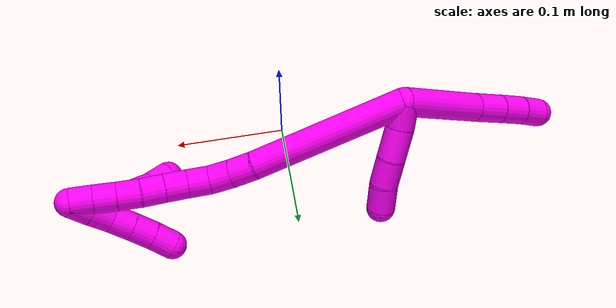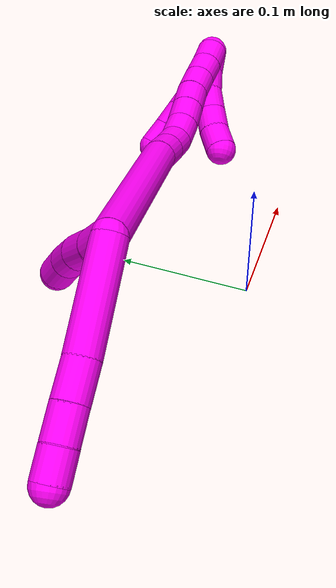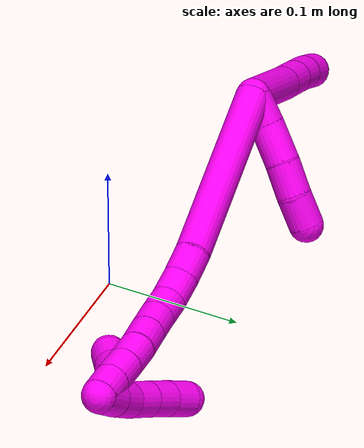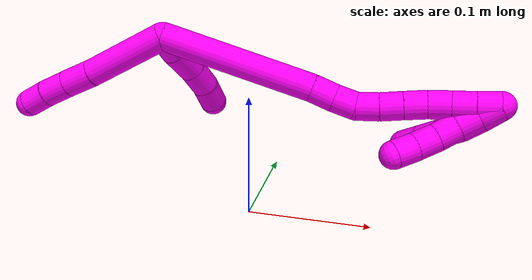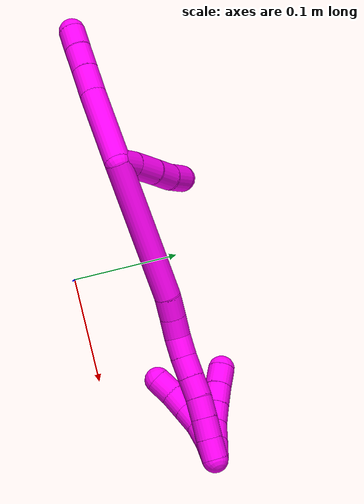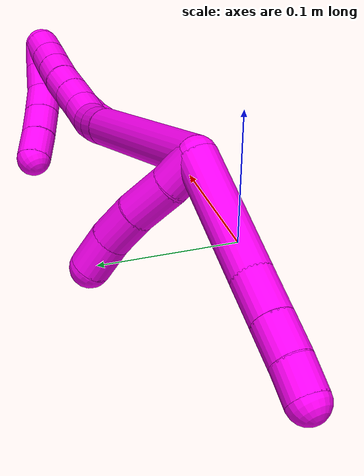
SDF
<sdf version="1.7">
 <world name="default">
  <model name="10">
   <static>0</static>
   <link name="10">
    <collision name="collision-cylinder-e_1_2_8">
     <pose>-0.000288 0.001945 -0.038503 -3.09113 -0.007478 0.294165</pose>
     <geometry><cylinder><radius>0.0125</radius><length>0.077106</length></cylinder></geometry>
     <surface>
      <friction><ode><mu>1.16</mu><mu2>1.16</mu2><slip1>0</slip1><slip2>0</slip2></ode></friction>
      <contact><ode><kp>1e+06</kp><kd>1</kd><max_vel>0</max_vel><min_depth>0.001</min_depth></ode></contact>
     </surface>
    </collision>
    <visual name="visual-cylinder-e_1_2_8">
     <pose>-0.000288 0.001945 -0.038503 -3.09113 -0.007478 0.294165</pose>
     <geometry><cylinder><radius>0.0125</radius><length>0.077106</length></cylinder></geometry>
     <material><ambient>1 0 0.964706 1</ambient></material>
    </visual>
    <collision name="collision-cylinder-e_2_8_9">
     <pose>-0.001516 0.004891 -0.090505 -3.06751 -0.06926 1.50344</pose>
     <geometry><cylinder><radius>0.0125</radius><length>0.027137</length></cylinder></geometry>
     <surface>
      <friction><ode><mu>1.16</mu><mu2>1.16</mu2><slip1>0</slip1><slip2>0</slip2></ode></friction>
      <contact><ode><kp>1e+06</kp><kd>1</kd><max_vel>0</max_vel><min_depth>0.001</min_depth></ode></contact>
     </surface>
    </collision>
    <visual name="visual-cylinder-e_2_8_9">
     <pose>-0.001516 0.004891 -0.090505 -3.06751 -0.06926 1.50344</pose>
     <geometry><cylinder><radius>0.0125</radius><length>0.027137</length></cylinder></geometry>
     <material><ambient>1 0 0.964706 1</ambient></material>
    </visual>
    <collision name="collision-cylinder-e_3_9_10">
     <pose>-0.002992 0.006697 -0.116015 -3.07479 -0.044581 1.17678</pose>
     <geometry><cylinder><radius>0.0125</radius><length>0.0241</length></cylinder></geometry>
     <surface>
      <friction><ode><mu>1.16</mu><mu2>1.16</mu2><slip1>0</slip1><slip2>0</slip2></ode></friction>
      <contact><ode><kp>1e+06</kp><kd>1</kd><max_vel>0</max_vel><min_depth>0.001</min_depth></ode></contact>
     </surface>
    </collision>
    <visual name="visual-cylinder-e_3_9_10">
     <pose>-0.002992 0.006697 -0.116015 -3.07479 -0.044581 1.17678</pose>
     <geometry><cylinder><radius>0.0125</radius><length>0.0241</length></cylinder></geometry>
     <material><ambient>1 0 0.964706 1</ambient></material>
    </visual>
    <collision name="collision-cylinder-e_4_10_6">
     <pose>-0.003301 0.008372 -0.138817 -3.06101 0.021011 -0.509879</pose>
     <geometry><cylinder><radius>0.0125</radius><length>0.021657</length></cylinder></geometry>
     <surface>
      <friction><ode><mu>1.16</mu><mu2>1.16</mu2><slip1>0</slip1><slip2>0</slip2></ode></friction>
      <contact><ode><kp>1e+06</kp><kd>1</kd><max_vel>0</max_vel><min_depth>0.001</min_depth></ode></contact>
     </surface>
    </collision>
    <visual name="visual-cylinder-e_4_10_6">
     <pose>-0.003301 0.008372 -0.138817 -3.06101 0.021011 -0.509879</pose>
     <geometry><cylinder><radius>0.0125</radius><length>0.021657</length></cylinder></geometry>
     <material><ambient>1 0 0.964706 1</ambient></material>
    </visual>
    <collision name="collision-cylinder-e_1_2_11">
     <pose>0.009026 0.006741 -0.001081 -1.72986 0.923236 -1.05659</pose>
     <geometry><cylinder><radius>0.0125</radius><length>0.022634</length></cylinder></geometry>
     <surface>
      <friction><ode><mu>1.16</mu><mu2>1.16</mu2><slip1>0</slip1><slip2>0</slip2></ode></friction>
      <contact><ode><kp>1e+06</kp><kd>1</kd><max_vel>0</max_vel><min_depth>0.001</min_depth></ode></contact>
     </surface>
    </collision>
    <visual name="visual-cylinder-e_1_2_11">
     <pose>0.009026 0.006741 -0.001081 -1.72986 0.923236 -1.05659</pose>
     <geometry><cylinder><radius>0.0125</radius><length>0.022634</length></cylinder></geometry>
     <material><ambient>1 0 0.964706 1</ambient></material>
    </visual>
    <collision name="collision-cylinder-e_2_11_12">
     <pose>0.029767 0.021957 -0.00167 -1.51268 0.943695 -0.89742</pose>
     <geometry><cylinder><radius>0.0125</radius><length>0.028934</length></cylinder></geometry>
     <surface>
      <friction><ode><mu>1.16</mu><mu2>1.16</mu2><slip1>0</slip1><slip2>0</slip2></ode></friction>
      <contact><ode><kp>1e+06</kp><kd>1</kd><max_vel>0</max_vel><min_depth>0.001</min_depth></ode></contact>
     </surface>
    </collision>
    <visual name="visual-cylinder-e_2_11_12">
     <pose>0.029767 0.021957 -0.00167 -1.51268 0.943695 -0.89742</pose>
     <geometry><cylinder><radius>0.0125</radius><length>0.028934</length></cylinder></geometry>
     <material><ambient>1 0 0.964706 1</ambient></material>
    </visual>
    <collision name="collision-cylinder-e_3_12_13">
     <pose>0.052007 0.036915 -0.001644 -1.64282 1.01757 -1.08003</pose>
     <geometry><cylinder><radius>0.0125</radius><length>0.024743</length></cylinder></geometry>
     <surface>
      <friction><ode><mu>1.16</mu><mu2>1.16</mu2><slip1>0</slip1><slip2>0</slip2></ode></friction>
      <contact><ode><kp>1e+06</kp><kd>1</kd><max_vel>0</max_vel><min_depth>0.001</min_depth></ode></contact>
     </surface>
    </collision>
    <visual name="visual-cylinder-e_3_12_13">
     <pose>0.052007 0.036915 -0.001644 -1.64282 1.01757 -1.08003</pose>
     <geometry><cylinder><radius>0.0125</radius><length>0.024743</length></cylinder></geometry>
     <material><ambient>1 0 0.964706 1</ambient></material>
    </visual>
    <collision name="collision-cylinder-e_4_13_5">
     <pose>0.072335 0.049632 -0.004429 -1.92668 0.974682 -1.30279</pose>
     <geometry><cylinder><radius>0.0125</radius><length>0.023689</length></cylinder></geometry>
     <surface>
      <friction><ode><mu>1.16</mu><mu2>1.16</mu2><slip1>0</slip1><slip2>0</slip2></ode></friction>
      <contact><ode><kp>1e+06</kp><kd>1</kd><max_vel>0</max_vel><min_depth>0.001</min_depth></ode></contact>
     </surface>
    </collision>
    <visual name="visual-cylinder-e_4_13_5">
     <pose>0.072335 0.049632 -0.004429 -1.92668 0.974682 -1.30279</pose>
     <geometry><cylinder><radius>0.0125</radius><length>0.023689</length></cylinder></geometry>
     <material><ambient>1 0 0.964706 1</ambient></material>
    </visual>
    <collision name="collision-cylinder-e_1_2_14">
     <pose>0.050283 0.000332 0.047447 -0.007001 0.814395 -0.003019</pose>
     <geometry><cylinder><radius>0.0125</radius><length>0.13827</length></cylinder></geometry>
     <surface>
      <friction><ode><mu>1.16</mu><mu2>1.16</mu2><slip1>0</slip1><slip2>0</slip2></ode></friction>
      <contact><ode><kp>1e+06</kp><kd>1</kd><max_vel>0</max_vel><min_depth>0.001</min_depth></ode></contact>
     </surface>
    </collision>
    <visual name="visual-cylinder-e_1_2_14">
     <pose>0.050283 0.000332 0.047447 -0.007001 0.814395 -0.003019</pose>
     <geometry><cylinder><radius>0.0125</radius><length>0.13827</length></cylinder></geometry>
     <material><ambient>1 0 0.964706 1</ambient></material>
    </visual>
    <collision name="collision-cylinder-e_2_14_15">
     <pose>0.108753 -0.000264 0.101588 0.137757 0.880686 0.064991</pose>
     <geometry><cylinder><radius>0.0125</radius><length>0.021234</length></cylinder></geometry>
     <surface>
      <friction><ode><mu>1.16</mu><mu2>1.16</mu2><slip1>0</slip1><slip2>0</slip2></ode></friction>
      <contact><ode><kp>1e+06</kp><kd>1</kd><max_vel>0</max_vel><min_depth>0.001</min_depth></ode></contact>
     </surface>
    </collision>
    <visual name="visual-cylinder-e_2_14_15">
     <pose>0.108753 -0.000264 0.101588 0.137757 0.880686 0.064991</pose>
     <geometry><cylinder><radius>0.0125</radius><length>0.021234</length></cylinder></geometry>
     <material><ambient>1 0 0.964706 1</ambient></material>
    </visual>
    <collision name="collision-cylinder-e_3_15_16">
     <pose>0.124135 -0.002341 0.115194 0.16475 0.798693 0.069658</pose>
     <geometry><cylinder><radius>0.0125</radius><length>0.020084</length></cylinder></geometry>
     <surface>
      <friction><ode><mu>1.16</mu><mu2>1.16</mu2><slip1>0</slip1><slip2>0</slip2></ode></friction>
      <contact><ode><kp>1e+06</kp><kd>1</kd><max_vel>0</max_vel><min_depth>0.001</min_depth></ode></contact>
     </surface>
    </collision>
    <visual name="visual-cylinder-e_3_15_16">
     <pose>0.124135 -0.002341 0.115194 0.16475 0.798693 0.069658</pose>
     <geometry><cylinder><radius>0.0125</radius><length>0.020084</length></cylinder></geometry>
     <material><ambient>1 0 0.964706 1</ambient></material>
    </visual>
    <collision name="collision-cylinder-e_4_16_17">
     <pose>0.135858 -0.004303 0.131067 0.090458 0.46624 0.021492</pose>
     <geometry><cylinder><radius>0.0125</radius><length>0.020147</length></cylinder></geometry>
     <surface>
      <friction><ode><mu>1.16</mu><mu2>1.16</mu2><slip1>0</slip1><slip2>0</slip2></ode></friction>
      <contact><ode><kp>1e+06</kp><kd>1</kd><max_vel>0</max_vel><min_depth>0.001</min_depth></ode></contact>
     </surface>
    </collision>
    <visual name="visual-cylinder-e_4_16_17">
     <pose>0.135858 -0.004303 0.131067 0.090458 0.46624 0.021492</pose>
     <geometry><cylinder><radius>0.0125</radius><length>0.020147</length></cylinder></geometry>
     <material><ambient>1 0 0.964706 1</ambient></material>
    </visual>
    <collision name="collision-cylinder-e_5_17_18">
     <pose>0.144252 -0.00538 0.149261 0.028588 0.396361 0.005741</pose>
     <geometry><cylinder><radius>0.0125</radius><length>0.020026</length></cylinder></geometry>
     <surface>
      <friction><ode><mu>1.16</mu><mu2>1.16</mu2><slip1>0</slip1><slip2>0</slip2></ode></friction>
      <contact><ode><kp>1e+06</kp><kd>1</kd><max_vel>0</max_vel><min_depth>0.001</min_depth></ode></contact>
     </surface>
    </collision>
    <visual name="visual-cylinder-e_5_17_18">
     <pose>0.144252 -0.00538 0.149261 0.028588 0.396361 0.005741</pose>
     <geometry><cylinder><radius>0.0125</radius><length>0.020026</length></cylinder></geometry>
     <material><ambient>1 0 0.964706 1</ambient></material>
    </visual>
    <collision name="collision-cylinder-e_6_18_19">
     <pose>0.152142 -0.005845 0.167765 0.021689 0.409504 0.004504</pose>
     <geometry><cylinder><radius>0.0125</radius><length>0.020219</length></cylinder></geometry>
     <surface>
      <friction><ode><mu>1.16</mu><mu2>1.16</mu2><slip1>0</slip1><slip2>0</slip2></ode></friction>
      <contact><ode><kp>1e+06</kp><kd>1</kd><max_vel>0</max_vel><min_depth>0.001</min_depth></ode></contact>
     </surface>
    </collision>
    <visual name="visual-cylinder-e_6_18_19">
     <pose>0.152142 -0.005845 0.167765 0.021689 0.409504 0.004504</pose>
     <geometry><cylinder><radius>0.0125</radius><length>0.020219</length></cylinder></geometry>
     <material><ambient>1 0 0.964706 1</ambient></material>
    </visual>
    <collision name="collision-cylinder-e_7_19_20">
     <pose>0.160542 -0.007175 0.185962 0.125791 0.452594 0.028998</pose>
     <geometry><cylinder><radius>0.0125</radius><length>0.020006</length></cylinder></geometry>
     <surface>
      <friction><ode><mu>1.16</mu><mu2>1.16</mu2><slip1>0</slip1><slip2>0</slip2></ode></friction>
      <contact><ode><kp>1e+06</kp><kd>1</kd><max_vel>0</max_vel><min_depth>0.001</min_depth></ode></contact>
     </surface>
    </collision>
    <visual name="visual-cylinder-e_7_19_20">
     <pose>0.160542 -0.007175 0.185962 0.125791 0.452594 0.028998</pose>
     <geometry><cylinder><radius>0.0125</radius><length>0.020006</length></cylinder></geometry>
     <material><ambient>1 0 0.964706 1</ambient></material>
    </visual>
    <collision name="collision-cylinder-e_8_20_21">
     <pose>0.169313 -0.009649 0.203774 0.150246 0.454923 0.034839</pose>
     <geometry><cylinder><radius>0.0125</radius><length>0.020014</length></cylinder></geometry>
     <surface>
      <friction><ode><mu>1.16</mu><mu2>1.16</mu2><slip1>0</slip1><slip2>0</slip2></ode></friction>
      <contact><ode><kp>1e+06</kp><kd>1</kd><max_vel>0</max_vel><min_depth>0.001</min_depth></ode></contact>
     </surface>
    </collision>
    <visual name="visual-cylinder-e_8_20_21">
     <pose>0.169313 -0.009649 0.203774 0.150246 0.454923 0.034839</pose>
     <geometry><cylinder><radius>0.0125</radius><length>0.020014</length></cylinder></geometry>
     <material><ambient>1 0 0.964706 1</ambient></material>
    </visual>
    <collision name="collision-cylinder-e_9_21_1">
     <pose>0.177848 -0.011977 0.221713 0.108134 0.426557 0.023441</pose>
     <geometry><cylinder><radius>0.0125</radius><length>0.020001</length></cylinder></geometry>
     <surface>
      <friction><ode><mu>1.16</mu><mu2>1.16</mu2><slip1>0</slip1><slip2>0</slip2></ode></friction>
      <contact><ode><kp>1e+06</kp><kd>1</kd><max_vel>0</max_vel><min_depth>0.001</min_depth></ode></contact>
     </surface>
    </collision>
    <visual name="visual-cylinder-e_9_21_1">
     <pose>0.177848 -0.011977 0.221713 0.108134 0.426557 0.023441</pose>
     <geometry><cylinder><radius>0.0125</radius><length>0.020001</length></cylinder></geometry>
     <material><ambient>1 0 0.964706 1</ambient></material>
    </visual>
    <collision name="collision-cylinder-e_1_1_22">
     <pose>0.184096 -0.009925 0.221473 -2.82593 0.2127 -1.18164</pose>
     <geometry><cylinder><radius>0.0125</radius><length>0.02</length></cylinder></geometry>
     <surface>
      <friction><ode><mu>1.16</mu><mu2>1.16</mu2><slip1>0</slip1><slip2>0</slip2></ode></friction>
      <contact><ode><kp>1e+06</kp><kd>1</kd><max_vel>0</max_vel><min_depth>0.001</min_depth></ode></contact>
     </surface>
    </collision>
    <visual name="visual-cylinder-e_1_1_22">
     <pose>0.184096 -0.009925 0.221473 -2.82593 0.2127 -1.18164</pose>
     <geometry><cylinder><radius>0.0125</radius><length>0.02</length></cylinder></geometry>
     <material><ambient>1 0 0.964706 1</ambient></material>
    </visual>
    <collision name="collision-cylinder-e_2_22_23">
     <pose>0.187696 -0.003904 0.202754 -2.83477 0.149459 -0.901838</pose>
     <geometry><cylinder><radius>0.0125</radius><length>0.02</length></cylinder></geometry>
     <surface>
      <friction><ode><mu>1.16</mu><mu2>1.16</mu2><slip1>0</slip1><slip2>0</slip2></ode></friction>
      <contact><ode><kp>1e+06</kp><kd>1</kd><max_vel>0</max_vel><min_depth>0.001</min_depth></ode></contact>
     </surface>
    </collision>
    <visual name="visual-cylinder-e_2_22_23">
     <pose>0.187696 -0.003904 0.202754 -2.83477 0.149459 -0.901838</pose>
     <geometry><cylinder><radius>0.0125</radius><length>0.02</length></cylinder></geometry>
     <material><ambient>1 0 0.964706 1</ambient></material>
    </visual>
    <collision name="collision-cylinder-e_3_23_24">
     <pose>0.189366 0.003513 0.184364 -2.68259 0.018137 -0.0776</pose>
     <geometry><cylinder><radius>0.0125</radius><length>0.02</length></cylinder></geometry>
     <surface>
      <friction><ode><mu>1.16</mu><mu2>1.16</mu2><slip1>0</slip1><slip2>0</slip2></ode></friction>
      <contact><ode><kp>1e+06</kp><kd>1</kd><max_vel>0</max_vel><min_depth>0.001</min_depth></ode></contact>
     </surface>
    </collision>
    <visual name="visual-cylinder-e_3_23_24">
     <pose>0.189366 0.003513 0.184364 -2.68259 0.018137 -0.0776</pose>
     <geometry><cylinder><radius>0.0125</radius><length>0.02</length></cylinder></geometry>
     <material><ambient>1 0 0.964706 1</ambient></material>
    </visual>
    <collision name="collision-cylinder-e_4_24_25">
     <pose>0.189829 0.012546 0.166528 -2.66301 0.028092 -0.115026</pose>
     <geometry><cylinder><radius>0.0125</radius><length>0.02</length></cylinder></geometry>
     <surface>
      <friction><ode><mu>1.16</mu><mu2>1.16</mu2><slip1>0</slip1><slip2>0</slip2></ode></friction>
      <contact><ode><kp>1e+06</kp><kd>1</kd><max_vel>0</max_vel><min_depth>0.001</min_depth></ode></contact>
     </surface>
    </collision>
    <visual name="visual-cylinder-e_4_24_25">
     <pose>0.189829 0.012546 0.166528 -2.66301 0.028092 -0.115026</pose>
     <geometry><cylinder><radius>0.0125</radius><length>0.02</length></cylinder></geometry>
     <material><ambient>1 0 0.964706 1</ambient></material>
    </visual>
    <collision name="collision-cylinder-e_5_25_4">
     <pose>0.190595 0.022152 0.149009 -2.61705 0.04851 -0.180246</pose>
     <geometry><cylinder><radius>0.0125</radius><length>0.02</length></cylinder></geometry>
     <surface>
      <friction><ode><mu>1.16</mu><mu2>1.16</mu2><slip1>0</slip1><slip2>0</slip2></ode></friction>
      <contact><ode><kp>1e+06</kp><kd>1</kd><max_vel>0</max_vel><min_depth>0.001</min_depth></ode></contact>
     </surface>
    </collision>
    <visual name="visual-cylinder-e_5_25_4">
     <pose>0.190595 0.022152 0.149009 -2.61705 0.04851 -0.180246</pose>
     <geometry><cylinder><radius>0.0125</radius><length>0.02</length></cylinder></geometry>
     <material><ambient>1 0 0.964706 1</ambient></material>
    </visual>
    <collision name="collision-cylinder-e_1_1_26">
     <pose>0.182271 -0.012517 0.220778 -3.09732 0.028597 -1.14691</pose>
     <geometry><cylinder><radius>0.0125</radius><length>0.02</length></cylinder></geometry>
     <surface>
      <friction><ode><mu>1.16</mu><mu2>1.16</mu2><slip1>0</slip1><slip2>0</slip2></ode></friction>
      <contact><ode><kp>1e+06</kp><kd>1</kd><max_vel>0</max_vel><min_depth>0.001</min_depth></ode></contact>
     </surface>
    </collision>
    <visual name="visual-cylinder-e_1_1_26">
     <pose>0.182271 -0.012517 0.220778 -3.09732 0.028597 -1.14691</pose>
     <geometry><cylinder><radius>0.0125</radius><length>0.02</length></cylinder></geometry>
     <material><ambient>1 0 0.964706 1</ambient></material>
    </visual>
    <collision name="collision-cylinder-e_2_26_27">
     <pose>0.182364 -0.013045 0.200841 3.04433 -0.019307 -0.391613</pose>
     <geometry><cylinder><radius>0.0125</radius><length>0.02</length></cylinder></geometry>
     <surface>
      <friction><ode><mu>1.16</mu><mu2>1.16</mu2><slip1>0</slip1><slip2>0</slip2></ode></friction>
      <contact><ode><kp>1e+06</kp><kd>1</kd><max_vel>0</max_vel><min_depth>0.001</min_depth></ode></contact>
     </surface>
    </collision>
    <visual name="visual-cylinder-e_2_26_27">
     <pose>0.182364 -0.013045 0.200841 3.04433 -0.019307 -0.391613</pose>
     <geometry><cylinder><radius>0.0125</radius><length>0.02</length></cylinder></geometry>
     <material><ambient>1 0 0.964706 1</ambient></material>
    </visual>
    <collision name="collision-cylinder-e_3_27_28">
     <pose>0.181854 -0.016789 0.181288 2.86048 -0.031642 -0.222727</pose>
     <geometry><cylinder><radius>0.0125</radius><length>0.02</length></cylinder></geometry>
     <surface>
      <friction><ode><mu>1.16</mu><mu2>1.16</mu2><slip1>0</slip1><slip2>0</slip2></ode></friction>
      <contact><ode><kp>1e+06</kp><kd>1</kd><max_vel>0</max_vel><min_depth>0.001</min_depth></ode></contact>
     </surface>
    </collision>
    <visual name="visual-cylinder-e_3_27_28">
     <pose>0.181854 -0.016789 0.181288 2.86048 -0.031642 -0.222727</pose>
     <geometry><cylinder><radius>0.0125</radius><length>0.02</length></cylinder></geometry>
     <material><ambient>1 0 0.964706 1</ambient></material>
    </visual>
    <collision name="collision-cylinder-e_4_28_29">
     <pose>0.180334 -0.022536 0.162214 2.83734 -0.120715 -0.75095</pose>
     <geometry><cylinder><radius>0.0125</radius><length>0.02</length></cylinder></geometry>
     <surface>
      <friction><ode><mu>1.16</mu><mu2>1.16</mu2><slip1>0</slip1><slip2>0</slip2></ode></friction>
      <contact><ode><kp>1e+06</kp><kd>1</kd><max_vel>0</max_vel><min_depth>0.001</min_depth></ode></contact>
     </surface>
    </collision>
    <visual name="visual-cylinder-e_4_28_29">
     <pose>0.180334 -0.022536 0.162214 2.83734 -0.120715 -0.75095</pose>
     <geometry><cylinder><radius>0.0125</radius><length>0.02</length></cylinder></geometry>
     <material><ambient>1 0 0.964706 1</ambient></material>
    </visual>
    <collision name="collision-cylinder-e_5_29_3">
     <pose>0.177006 -0.029661 0.143896 2.7029 -0.213982 -0.897907</pose>
     <geometry><cylinder><radius>0.0125</radius><length>0.02</length></cylinder></geometry>
     <surface>
      <friction><ode><mu>1.16</mu><mu2>1.16</mu2><slip1>0</slip1><slip2>0</slip2></ode></friction>
      <contact><ode><kp>1e+06</kp><kd>1</kd><max_vel>0</max_vel><min_depth>0.001</min_depth></ode></contact>
     </surface>
    </collision>
    <visual name="visual-cylinder-e_5_29_3">
     <pose>0.177006 -0.029661 0.143896 2.7029 -0.213982 -0.897907</pose>
     <geometry><cylinder><radius>0.0125</radius><length>0.02</length></cylinder></geometry>
     <material><ambient>1 0 0.964706 1</ambient></material>
    </visual>
    <collision name="collision-sphere-3">
     <pose>0.174883 -0.033811 0.135049 0 -0 0</pose>
     <geometry><sphere><radius>0.0125</radius></sphere></geometry>
     <surface>
      <friction><ode><mu>1.16</mu><mu2>1.16</mu2><slip1>0</slip1><slip2>0</slip2></ode></friction>
      <contact><ode><kp>1e+06</kp><kd>1</kd><max_vel>0</max_vel><min_depth>0.001</min_depth></ode></contact>
     </surface>
    </collision>
    <visual name="visual-sphere-3">
     <pose>0.174883 -0.033811 0.135049 0 -0 0</pose>
     <geometry><sphere><radius>0.0125</radius></sphere></geometry>
     <material><ambient>1 0 0.964706 1</ambient></material>
    </visual>
    <collision name="collision-sphere-29">
     <pose>0.17913 -0.02551 0.152742 0 -0 0</pose>
     <geometry><sphere><radius>0.0125</radius></sphere></geometry>
     <surface>
      <friction><ode><mu>1.16</mu><mu2>1.16</mu2><slip1>0</slip1><slip2>0</slip2></ode></friction>
      <contact><ode><kp>1e+06</kp><kd>1</kd><max_vel>0</max_vel><min_depth>0.001</min_depth></ode></contact>
     </surface>
    </collision>
    <visual name="visual-sphere-29">
     <pose>0.17913 -0.02551 0.152742 0 -0 0</pose>
     <geometry><sphere><radius>0.0125</radius></sphere></geometry>
     <material><ambient>1 0 0.964706 1</ambient></material>
    </visual>
    <collision name="collision-sphere-28">
     <pose>0.181538 -0.019562 0.171685 0 -0 0</pose>
     <geometry><sphere><radius>0.0125</radius></sphere></geometry>
     <surface>
      <friction><ode><mu>1.16</mu><mu2>1.16</mu2><slip1>0</slip1><slip2>0</slip2></ode></friction>
      <contact><ode><kp>1e+06</kp><kd>1</kd><max_vel>0</max_vel><min_depth>0.001</min_depth></ode></contact>
     </surface>
    </collision>
    <visual name="visual-sphere-28">
     <pose>0.181538 -0.019562 0.171685 0 -0 0</pose>
     <geometry><sphere><radius>0.0125</radius></sphere></geometry>
     <material><ambient>1 0 0.964706 1</ambient></material>
    </visual>
    <collision name="collision-sphere-27">
     <pose>0.182171 -0.014016 0.19089 0 -0 0</pose>
     <geometry><sphere><radius>0.0125</radius></sphere></geometry>
     <surface>
      <friction><ode><mu>1.16</mu><mu2>1.16</mu2><slip1>0</slip1><slip2>0</slip2></ode></friction>
      <contact><ode><kp>1e+06</kp><kd>1</kd><max_vel>0</max_vel><min_depth>0.001</min_depth></ode></contact>
     </surface>
    </collision>
    <visual name="visual-sphere-27">
     <pose>0.182171 -0.014016 0.19089 0 -0 0</pose>
     <geometry><sphere><radius>0.0125</radius></sphere></geometry>
     <material><ambient>1 0 0.964706 1</ambient></material>
    </visual>
    <collision name="collision-sphere-26">
     <pose>0.182557 -0.012074 0.210792 0 -0 0</pose>
     <geometry><sphere><radius>0.0125</radius></sphere></geometry>
     <surface>
      <friction><ode><mu>1.16</mu><mu2>1.16</mu2><slip1>0</slip1><slip2>0</slip2></ode></friction>
      <contact><ode><kp>1e+06</kp><kd>1</kd><max_vel>0</max_vel><min_depth>0.001</min_depth></ode></contact>
     </surface>
    </collision>
    <visual name="visual-sphere-26">
     <pose>0.182557 -0.012074 0.210792 0 -0 0</pose>
     <geometry><sphere><radius>0.0125</radius></sphere></geometry>
     <material><ambient>1 0 0.964706 1</ambient></material>
    </visual>
    <collision name="collision-sphere-4">
     <pose>0.191079 0.027154 0.140364 0 -0 0</pose>
     <geometry><sphere><radius>0.0125</radius></sphere></geometry>
     <surface>
      <friction><ode><mu>1.16</mu><mu2>1.16</mu2><slip1>0</slip1><slip2>0</slip2></ode></friction>
      <contact><ode><kp>1e+06</kp><kd>1</kd><max_vel>0</max_vel><min_depth>0.001</min_depth></ode></contact>
     </surface>
    </collision>
    <visual name="visual-sphere-4">
     <pose>0.191079 0.027154 0.140364 0 -0 0</pose>
     <geometry><sphere><radius>0.0125</radius></sphere></geometry>
     <material><ambient>1 0 0.964706 1</ambient></material>
    </visual>
    <collision name="collision-sphere-25">
     <pose>0.19011 0.01715 0.157655 0 -0 0</pose>
     <geometry><sphere><radius>0.0125</radius></sphere></geometry>
     <surface>
      <friction><ode><mu>1.16</mu><mu2>1.16</mu2><slip1>0</slip1><slip2>0</slip2></ode></friction>
      <contact><ode><kp>1e+06</kp><kd>1</kd><max_vel>0</max_vel><min_depth>0.001</min_depth></ode></contact>
     </surface>
    </collision>
    <visual name="visual-sphere-25">
     <pose>0.19011 0.01715 0.157655 0 -0 0</pose>
     <geometry><sphere><radius>0.0125</radius></sphere></geometry>
     <material><ambient>1 0 0.964706 1</ambient></material>
    </visual>
    <collision name="collision-sphere-24">
     <pose>0.189548 0.007943 0.175401 0 -0 0</pose>
     <geometry><sphere><radius>0.0125</radius></sphere></geometry>
     <surface>
      <friction><ode><mu>1.16</mu><mu2>1.16</mu2><slip1>0</slip1><slip2>0</slip2></ode></friction>
      <contact><ode><kp>1e+06</kp><kd>1</kd><max_vel>0</max_vel><min_depth>0.001</min_depth></ode></contact>
     </surface>
    </collision>
    <visual name="visual-sphere-24">
     <pose>0.189548 0.007943 0.175401 0 -0 0</pose>
     <geometry><sphere><radius>0.0125</radius></sphere></geometry>
     <material><ambient>1 0 0.964706 1</ambient></material>
    </visual>
    <collision name="collision-sphere-23">
     <pose>0.189185 -0.000917 0.193327 0 -0 0</pose>
     <geometry><sphere><radius>0.0125</radius></sphere></geometry>
     <surface>
      <friction><ode><mu>1.16</mu><mu2>1.16</mu2><slip1>0</slip1><slip2>0</slip2></ode></friction>
      <contact><ode><kp>1e+06</kp><kd>1</kd><max_vel>0</max_vel><min_depth>0.001</min_depth></ode></contact>
     </surface>
    </collision>
    <visual name="visual-sphere-23">
     <pose>0.189185 -0.000917 0.193327 0 -0 0</pose>
     <geometry><sphere><radius>0.0125</radius></sphere></geometry>
     <material><ambient>1 0 0.964706 1</ambient></material>
    </visual>
    <collision name="collision-sphere-22">
     <pose>0.186207 -0.00689 0.212181 0 -0 0</pose>
     <geometry><sphere><radius>0.0125</radius></sphere></geometry>
     <surface>
      <friction><ode><mu>1.16</mu><mu2>1.16</mu2><slip1>0</slip1><slip2>0</slip2></ode></friction>
      <contact><ode><kp>1e+06</kp><kd>1</kd><max_vel>0</max_vel><min_depth>0.001</min_depth></ode></contact>
     </surface>
    </collision>
    <visual name="visual-sphere-22">
     <pose>0.186207 -0.00689 0.212181 0 -0 0</pose>
     <geometry><sphere><radius>0.0125</radius></sphere></geometry>
     <material><ambient>1 0 0.964706 1</ambient></material>
    </visual>
    <collision name="collision-sphere-1">
     <pose>0.181985 -0.012959 0.230764 0 -0 0</pose>
     <geometry><sphere><radius>0.0125</radius></sphere></geometry>
     <surface>
      <friction><ode><mu>1.16</mu><mu2>1.16</mu2><slip1>0</slip1><slip2>0</slip2></ode></friction>
      <contact><ode><kp>1e+06</kp><kd>1</kd><max_vel>0</max_vel><min_depth>0.001</min_depth></ode></contact>
     </surface>
    </collision>
    <visual name="visual-sphere-1">
     <pose>0.181985 -0.012959 0.230764 0 -0 0</pose>
     <geometry><sphere><radius>0.0125</radius></sphere></geometry>
     <material><ambient>1 0 0.964706 1</ambient></material>
    </visual>
    <collision name="collision-sphere-21">
     <pose>0.17371 -0.010994 0.212662 0 -0 0</pose>
     <geometry><sphere><radius>0.0125</radius></sphere></geometry>
     <surface>
      <friction><ode><mu>1.16</mu><mu2>1.16</mu2><slip1>0</slip1><slip2>0</slip2></ode></friction>
      <contact><ode><kp>1e+06</kp><kd>1</kd><max_vel>0</max_vel><min_depth>0.001</min_depth></ode></contact>
     </surface>
    </collision>
    <visual name="visual-sphere-21">
     <pose>0.17371 -0.010994 0.212662 0 -0 0</pose>
     <geometry><sphere><radius>0.0125</radius></sphere></geometry>
     <material><ambient>1 0 0.964706 1</ambient></material>
    </visual>
    <collision name="collision-sphere-11">
     <pose>0.018052 0.013482 -0.002163 0 -0 0</pose>
     <geometry><sphere><radius>0.0125</radius></sphere></geometry>
     <surface>
      <friction><ode><mu>1.16</mu><mu2>1.16</mu2><slip1>0</slip1><slip2>0</slip2></ode></friction>
      <contact><ode><kp>1e+06</kp><kd>1</kd><max_vel>0</max_vel><min_depth>0.001</min_depth></ode></contact>
     </surface>
    </collision>
    <visual name="visual-sphere-11">
     <pose>0.018052 0.013482 -0.002163 0 -0 0</pose>
     <geometry><sphere><radius>0.0125</radius></sphere></geometry>
     <material><ambient>1 0 0.964706 1</ambient></material>
    </visual>
    <collision name="collision-sphere-6">
     <pose>-0.003074 0.009243 -0.149608 0 -0 0</pose>
     <geometry><sphere><radius>0.0125</radius></sphere></geometry>
     <surface>
      <friction><ode><mu>1.16</mu><mu2>1.16</mu2><slip1>0</slip1><slip2>0</slip2></ode></friction>
      <contact><ode><kp>1e+06</kp><kd>1</kd><max_vel>0</max_vel><min_depth>0.001</min_depth></ode></contact>
     </surface>
    </collision>
    <visual name="visual-sphere-6">
     <pose>-0.003074 0.009243 -0.149608 0 -0 0</pose>
     <geometry><sphere><radius>0.0125</radius></sphere></geometry>
     <material><ambient>1 0 0.964706 1</ambient></material>
    </visual>
    <collision name="collision-sphere-10">
     <pose>-0.003529 0.0075 -0.128026 0 -0 0</pose>
     <geometry><sphere><radius>0.0125</radius></sphere></geometry>
     <surface>
      <friction><ode><mu>1.16</mu><mu2>1.16</mu2><slip1>0</slip1><slip2>0</slip2></ode></friction>
      <contact><ode><kp>1e+06</kp><kd>1</kd><max_vel>0</max_vel><min_depth>0.001</min_depth></ode></contact>
     </surface>
    </collision>
    <visual name="visual-sphere-10">
     <pose>-0.003529 0.0075 -0.128026 0 -0 0</pose>
     <geometry><sphere><radius>0.0125</radius></sphere></geometry>
     <material><ambient>1 0 0.964706 1</ambient></material>
    </visual>
    <collision name="collision-sphere-9">
     <pose>-0.002455 0.005893 -0.104004 0 -0 0</pose>
     <geometry><sphere><radius>0.0125</radius></sphere></geometry>
     <surface>
      <friction><ode><mu>1.16</mu><mu2>1.16</mu2><slip1>0</slip1><slip2>0</slip2></ode></friction>
      <contact><ode><kp>1e+06</kp><kd>1</kd><max_vel>0</max_vel><min_depth>0.001</min_depth></ode></contact>
     </surface>
    </collision>
    <visual name="visual-sphere-9">
     <pose>-0.002455 0.005893 -0.104004 0 -0 0</pose>
     <geometry><sphere><radius>0.0125</radius></sphere></geometry>
     <material><ambient>1 0 0.964706 1</ambient></material>
    </visual>
    <collision name="collision-sphere-2">
     <geometry><sphere><radius>0.0125</radius></sphere></geometry>
     <surface>
      <friction><ode><mu>1.16</mu><mu2>1.16</mu2><slip1>0</slip1><slip2>0</slip2></ode></friction>
      <contact><ode><kp>1e+06</kp><kd>1</kd><max_vel>0</max_vel><min_depth>0.001</min_depth></ode></contact>
     </surface>
    </collision>
    <visual name="visual-sphere-2">
     <geometry><sphere><radius>0.0125</radius></sphere></geometry>
     <material><ambient>1 0 0.964706 1</ambient></material>
    </visual>
    <collision name="collision-sphere-19">
     <pose>0.156168 -0.006046 0.177037 0 -0 0</pose>
     <geometry><sphere><radius>0.0125</radius></sphere></geometry>
     <surface>
      <friction><ode><mu>1.16</mu><mu2>1.16</mu2><slip1>0</slip1><slip2>0</slip2></ode></friction>
      <contact><ode><kp>1e+06</kp><kd>1</kd><max_vel>0</max_vel><min_depth>0.001</min_depth></ode></contact>
     </surface>
    </collision>
    <visual name="visual-sphere-19">
     <pose>0.156168 -0.006046 0.177037 0 -0 0</pose>
     <geometry><sphere><radius>0.0125</radius></sphere></geometry>
     <material><ambient>1 0 0.964706 1</ambient></material>
    </visual>
    <collision name="collision-sphere-8">
     <pose>-0.000577 0.003889 -0.077006 0 -0 0</pose>
     <geometry><sphere><radius>0.0125</radius></sphere></geometry>
     <surface>
      <friction><ode><mu>1.16</mu><mu2>1.16</mu2><slip1>0</slip1><slip2>0</slip2></ode></friction>
      <contact><ode><kp>1e+06</kp><kd>1</kd><max_vel>0</max_vel><min_depth>0.001</min_depth></ode></contact>
     </surface>
    </collision>
    <visual name="visual-sphere-8">
     <pose>-0.000577 0.003889 -0.077006 0 -0 0</pose>
     <geometry><sphere><radius>0.0125</radius></sphere></geometry>
     <material><ambient>1 0 0.964706 1</ambient></material>
    </visual>
    <collision name="collision-sphere-12">
     <pose>0.041481 0.030432 -0.001177 0 -0 0</pose>
     <geometry><sphere><radius>0.0125</radius></sphere></geometry>
     <surface>
      <friction><ode><mu>1.16</mu><mu2>1.16</mu2><slip1>0</slip1><slip2>0</slip2></ode></friction>
      <contact><ode><kp>1e+06</kp><kd>1</kd><max_vel>0</max_vel><min_depth>0.001</min_depth></ode></contact>
     </surface>
    </collision>
    <visual name="visual-sphere-12">
     <pose>0.041481 0.030432 -0.001177 0 -0 0</pose>
     <geometry><sphere><radius>0.0125</radius></sphere></geometry>
     <material><ambient>1 0 0.964706 1</ambient></material>
    </visual>
    <collision name="collision-sphere-13">
     <pose>0.062533 0.043399 -0.002112 0 -0 0</pose>
     <geometry><sphere><radius>0.0125</radius></sphere></geometry>
     <surface>
      <friction><ode><mu>1.16</mu><mu2>1.16</mu2><slip1>0</slip1><slip2>0</slip2></ode></friction>
      <contact><ode><kp>1e+06</kp><kd>1</kd><max_vel>0</max_vel><min_depth>0.001</min_depth></ode></contact>
     </surface>
    </collision>
    <visual name="visual-sphere-13">
     <pose>0.062533 0.043399 -0.002112 0 -0 0</pose>
     <geometry><sphere><radius>0.0125</radius></sphere></geometry>
     <material><ambient>1 0 0.964706 1</ambient></material>
    </visual>
    <collision name="collision-sphere-5">
     <pose>0.082136 0.055865 -0.006746 0 -0 0</pose>
     <geometry><sphere><radius>0.0125</radius></sphere></geometry>
     <surface>
      <friction><ode><mu>1.16</mu><mu2>1.16</mu2><slip1>0</slip1><slip2>0</slip2></ode></friction>
      <contact><ode><kp>1e+06</kp><kd>1</kd><max_vel>0</max_vel><min_depth>0.001</min_depth></ode></contact>
     </surface>
    </collision>
    <visual name="visual-sphere-5">
     <pose>0.082136 0.055865 -0.006746 0 -0 0</pose>
     <geometry><sphere><radius>0.0125</radius></sphere></geometry>
     <material><ambient>1 0 0.964706 1</ambient></material>
    </visual>
    <collision name="collision-sphere-14">
     <pose>0.100565 0.000664 0.094893 0 -0 0</pose>
     <geometry><sphere><radius>0.0125</radius></sphere></geometry>
     <surface>
      <friction><ode><mu>1.16</mu><mu2>1.16</mu2><slip1>0</slip1><slip2>0</slip2></ode></friction>
      <contact><ode><kp>1e+06</kp><kd>1</kd><max_vel>0</max_vel><min_depth>0.001</min_depth></ode></contact>
     </surface>
    </collision>
    <visual name="visual-sphere-14">
     <pose>0.100565 0.000664 0.094893 0 -0 0</pose>
     <geometry><sphere><radius>0.0125</radius></sphere></geometry>
     <material><ambient>1 0 0.964706 1</ambient></material>
    </visual>
    <collision name="collision-sphere-15">
     <pose>0.11694 -0.001192 0.108283 0 -0 0</pose>
     <geometry><sphere><radius>0.0125</radius></sphere></geometry>
     <surface>
      <friction><ode><mu>1.16</mu><mu2>1.16</mu2><slip1>0</slip1><slip2>0</slip2></ode></friction>
      <contact><ode><kp>1e+06</kp><kd>1</kd><max_vel>0</max_vel><min_depth>0.001</min_depth></ode></contact>
     </surface>
    </collision>
    <visual name="visual-sphere-15">
     <pose>0.11694 -0.001192 0.108283 0 -0 0</pose>
     <geometry><sphere><radius>0.0125</radius></sphere></geometry>
     <material><ambient>1 0 0.964706 1</ambient></material>
    </visual>
    <collision name="collision-sphere-16">
     <pose>0.131329 -0.00349 0.122105 0 -0 0</pose>
     <geometry><sphere><radius>0.0125</radius></sphere></geometry>
     <surface>
      <friction><ode><mu>1.16</mu><mu2>1.16</mu2><slip1>0</slip1><slip2>0</slip2></ode></friction>
      <contact><ode><kp>1e+06</kp><kd>1</kd><max_vel>0</max_vel><min_depth>0.001</min_depth></ode></contact>
     </surface>
    </collision>
    <visual name="visual-sphere-16">
     <pose>0.131329 -0.00349 0.122105 0 -0 0</pose>
     <geometry><sphere><radius>0.0125</radius></sphere></geometry>
     <material><ambient>1 0 0.964706 1</ambient></material>
    </visual>
    <collision name="collision-sphere-17">
     <pose>0.140386 -0.005116 0.140028 0 -0 0</pose>
     <geometry><sphere><radius>0.0125</radius></sphere></geometry>
     <surface>
      <friction><ode><mu>1.16</mu><mu2>1.16</mu2><slip1>0</slip1><slip2>0</slip2></ode></friction>
      <contact><ode><kp>1e+06</kp><kd>1</kd><max_vel>0</max_vel><min_depth>0.001</min_depth></ode></contact>
     </surface>
    </collision>
    <visual name="visual-sphere-17">
     <pose>0.140386 -0.005116 0.140028 0 -0 0</pose>
     <geometry><sphere><radius>0.0125</radius></sphere></geometry>
     <material><ambient>1 0 0.964706 1</ambient></material>
    </visual>
    <collision name="collision-sphere-18">
     <pose>0.148117 -0.005644 0.158494 0 -0 0</pose>
     <geometry><sphere><radius>0.0125</radius></sphere></geometry>
     <surface>
      <friction><ode><mu>1.16</mu><mu2>1.16</mu2><slip1>0</slip1><slip2>0</slip2></ode></friction>
      <contact><ode><kp>1e+06</kp><kd>1</kd><max_vel>0</max_vel><min_depth>0.001</min_depth></ode></contact>
     </surface>
    </collision>
    <visual name="visual-sphere-18">
     <pose>0.148117 -0.005644 0.158494 0 -0 0</pose>
     <geometry><sphere><radius>0.0125</radius></sphere></geometry>
     <material><ambient>1 0 0.964706 1</ambient></material>
    </visual>
    <collision name="collision-sphere-20">
     <pose>0.164916 -0.008303 0.194886 0 -0 0</pose>
     <geometry><sphere><radius>0.0125</radius></sphere></geometry>
     <surface>
      <friction><ode><mu>1.16</mu><mu2>1.16</mu2><slip1>0</slip1><slip2>0</slip2></ode></friction>
      <contact><ode><kp>1e+06</kp><kd>1</kd><max_vel>0</max_vel><min_depth>0.001</min_depth></ode></contact>
     </surface>
    </collision>
    <visual name="visual-sphere-20">
     <pose>0.164916 -0.008303 0.194886 0 -0 0</pose>
     <geometry><sphere><radius>0.0125</radius></sphere></geometry>
     <material><ambient>1 0 0.964706 1</ambient></material>
    </visual>
    <inertial>
     <pose>0.095175 0.001605 0.076671 0 -0 0</pose>
     <mass>0.75</mass>
     <inertia>
      <ixx>0.000245</ixx>
      <ixy>0</ixy>
      <ixz>0</ixz>
      <iyy>0.000201</iyy>
      <iyz>0</iyz>
      <izz>-0.000195</izz>
     </inertia>
    </inertial>
   </link>
   <pose>-0.096321 0.067163 0.124521 -0.133548 1.05599 0.015128</pose>
  </model>
 </world>
</sdf>
